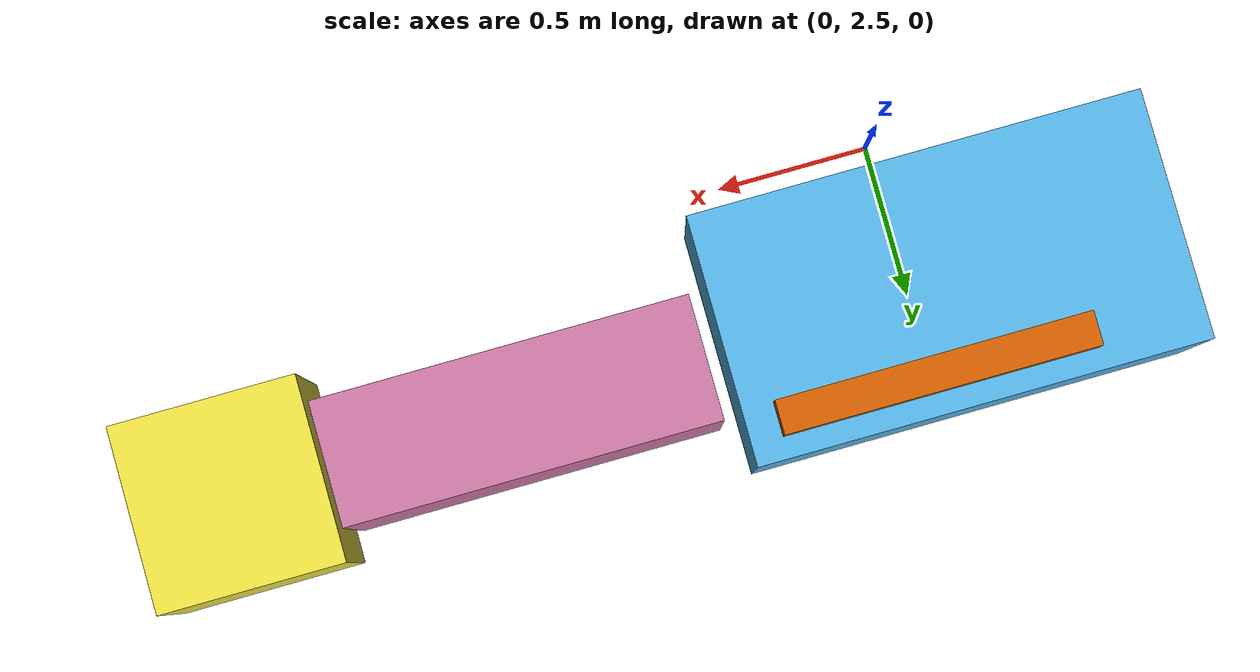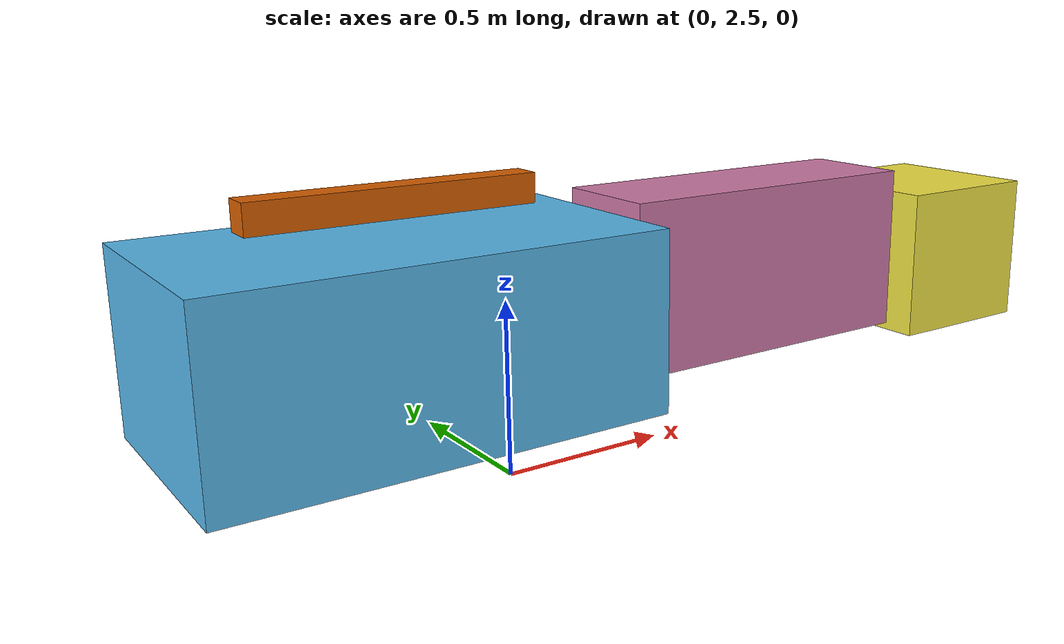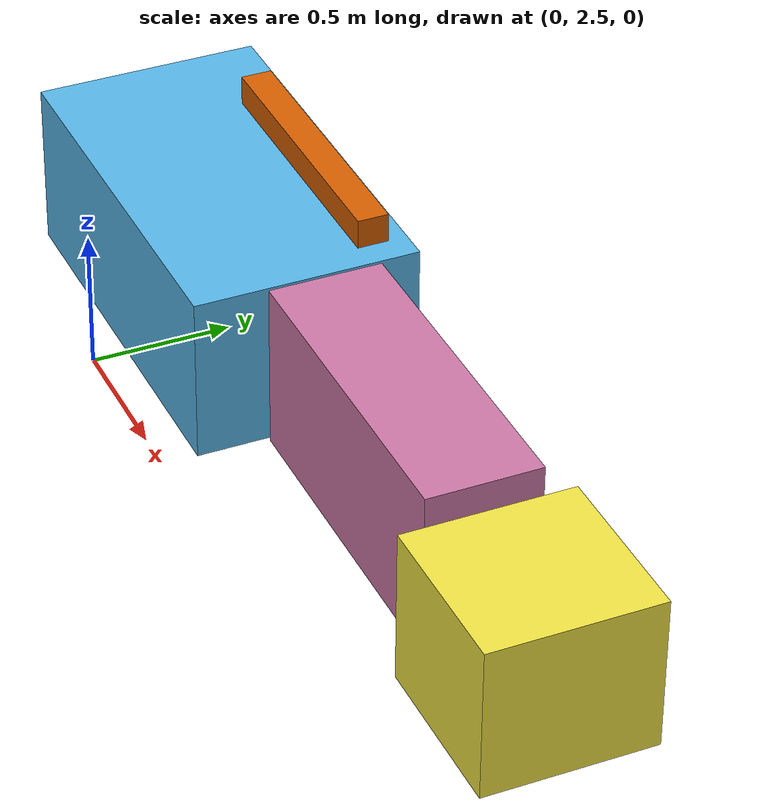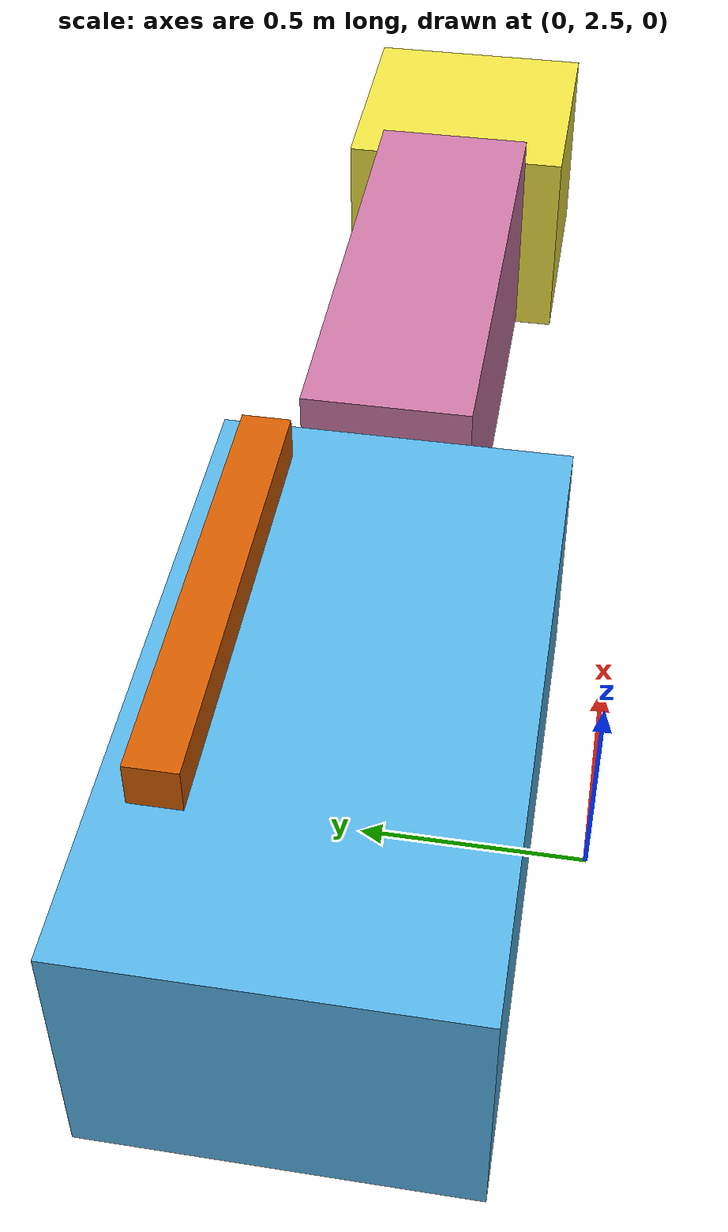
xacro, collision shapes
<?xml version="1.0"?>
<robot xmlns:xacro="http://ros.org/wiki/xacro" name="cell_b">

  <gazebo>
    <static>true</static>
  </gazebo>

  <!-- The facility root. Tied to the surveyed physical origin (L5); every frame
       below is expressed relative to it. -->
  <link name="cite_world"/>

  <!-- infeed_table — work_table_1450x800 -->
  <link name="infeed_table_base_link">
    <inertial>
      <origin xyz="0 0 0.3" rpy="0 0 0"/>
      <mass value="80"/>
      <inertia ixx="6.6667" ixy="0"
               ixz="0" iyy="16.4167"
               iyz="0" izz="18.2833"/>
    </inertial>
    <visual>
      <origin xyz="0 0 0.3" rpy="0 0 0"/>
      <geometry><mesh filename="file://$(find cite_description)/meshes/visual/tables/work_table_1450x800.glb" scale="1 1 1"/></geometry>
    </visual>
    <collision>
      <origin xyz="0 0 0.3" rpy="0 0 0"/>
      <geometry><box size="1.45 0.8 0.6"/></geometry>
    </collision>
  </link>
  <joint name="infeed_table_anchor" type="fixed">
    <parent link="cite_world"/>
    <child link="infeed_table_base_link"/>
    <origin xyz="-0.075 3.024 0" rpy="0 0 0"/>
  </joint>
  <link name="infeed_table_surface"/>
  <joint name="infeed_table_surface_fixed" type="fixed">
    <parent link="infeed_table_base_link"/>
    <child link="infeed_table_surface"/>
    <origin xyz="-0.425 -0.1 0.6" rpy="0 0 0"/>
  </joint>

  <!-- outfeed_table — work_table_600 -->
  <link name="outfeed_table_base_link">
    <inertial>
      <origin xyz="0 0 0.275" rpy="0 0 0"/>
      <mass value="30"/>
      <inertia ixx="1.65625" ixy="0"
               ixz="0" iyy="1.65625"
               iyz="0" izz="1.8"/>
    </inertial>
    <visual>
      <origin xyz="0 0 0.275" rpy="0 0 0"/>
      <geometry><mesh filename="file://$(find cite_description)/meshes/visual/tables/work_table_600.glb" scale="1 1 1"/></geometry>
    </visual>
    <collision>
      <origin xyz="0 0 0.275" rpy="0 0 0"/>
      <geometry><box size="0.6 0.6 0.55"/></geometry>
    </collision>
  </link>
  <joint name="outfeed_table_anchor" type="fixed">
    <parent link="cite_world"/>
    <child link="outfeed_table_base_link"/>
    <origin xyz="2.235 3.06 0" rpy="0 0 0"/>
  </joint>
  <link name="outfeed_table_surface"/>
  <joint name="outfeed_table_surface_fixed" type="fixed">
    <parent link="outfeed_table_base_link"/>
    <child link="outfeed_table_surface"/>
    <origin xyz="0 0 0.55" rpy="0 0 0"/>
  </joint>

  <!-- picker_track — ufactory_linear_motor -->
  <link name="picker_track_base_link">
    <inertial>
      <origin xyz="0 0 0.0525" rpy="0 0 0"/>
      <mass value="12"/>
      <inertia ixx="0.023125" ixy="0"
               ixz="0" iyy="1.011025"
               iyz="0" izz="1.0121"/>
    </inertial>
    <visual>
      <origin xyz="0 0 0.0525" rpy="0 0 0"/>
      <geometry><mesh filename="file://$(find cite_description)/meshes/visual/tracks/ufactory_linear_motor.glb" scale="1 1 1"/></geometry>
    </visual>
    <collision>
      <origin xyz="0 0 0.0525" rpy="0 0 0"/>
      <geometry><box size="1 0.11 0.105"/></geometry>
    </collision>
  </link>
  <joint name="picker_track_anchor" type="fixed">
    <parent link="cite_world"/>
    <child link="picker_track_base_link"/>
    <origin xyz="0.05 3.3 0.6" rpy="0 0 0"/>
  </joint>

  <!-- transfer_belt — belt_1200x400 -->
  <link name="transfer_belt_base_link">
    <inertial>
      <origin xyz="0 0 0.3" rpy="0 0 0"/>
      <mass value="45"/>
      <inertia ixx="1.95" ixy="0"
               ixz="0" iyy="6.75"
               iyz="0" izz="6"/>
    </inertial>
    <visual>
      <origin xyz="0 0 0.3" rpy="0 0 0"/>
      <geometry><mesh filename="file://$(find cite_description)/meshes/visual/conveyors/belt_1200x400.glb" scale="1 1 1"/></geometry>
    </visual>
    <collision>
      <origin xyz="0 0 0.3" rpy="0 0 0"/>
      <geometry><box size="1.2 0.4 0.6"/></geometry>
    </collision>
  </link>
  <joint name="transfer_belt_anchor" type="fixed">
    <parent link="cite_world"/>
    <child link="transfer_belt_base_link"/>
    <origin xyz="1.31 3.06 0.035" rpy="0 0 0"/>
  </joint>
  <link name="transfer_belt_infeed"/>
  <joint name="transfer_belt_infeed_fixed" type="fixed">
    <parent link="transfer_belt_base_link"/>
    <child link="transfer_belt_infeed"/>
    <origin xyz="-0.545 0 0.6" rpy="0 0 0"/>
  </joint>
  <link name="transfer_belt_outfeed"/>
  <joint name="transfer_belt_outfeed_fixed" type="fixed">
    <parent link="transfer_belt_base_link"/>
    <child link="transfer_belt_outfeed"/>
    <origin xyz="0.545 0 0.6" rpy="0 0 0"/>
  </joint>
  <link name="transfer_belt_surface"/>
  <joint name="transfer_belt_surface_fixed" type="fixed">
    <parent link="transfer_belt_base_link"/>
    <child link="transfer_belt_surface"/>
    <origin xyz="0 0 0.6" rpy="0 0 0"/>
  </joint>

</robot>
